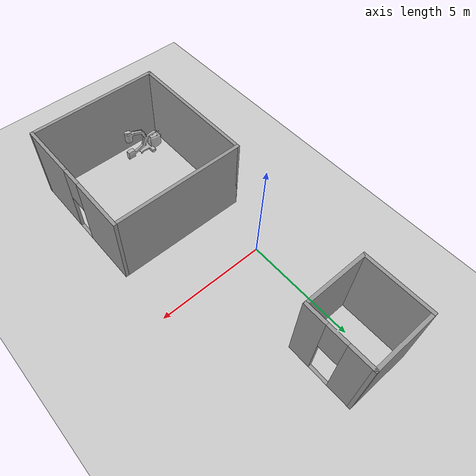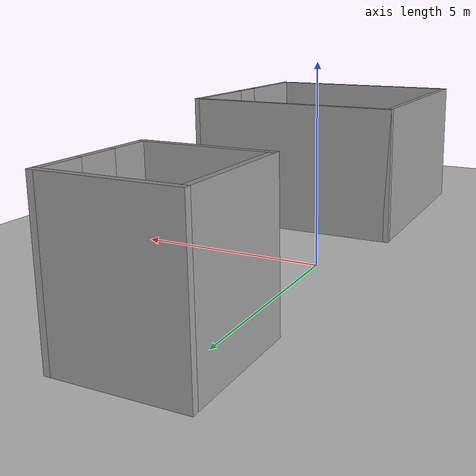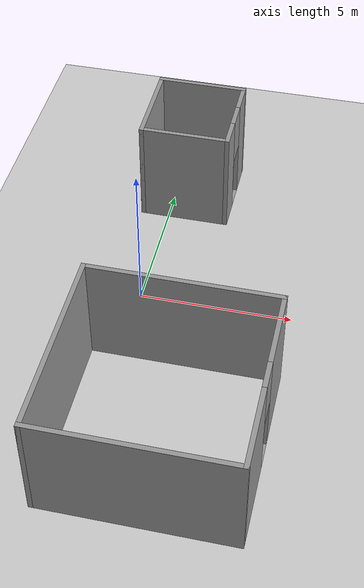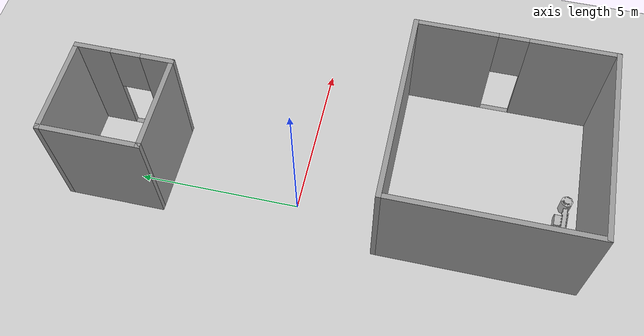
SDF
<sdf version="1.6">
 <world name="world">
  <gravity>0 0 -9.8</gravity>
  <physics name="default_physics" default="0" type="ode">
   <max_step_size>0.001</max_step_size>
   <real_time_factor>1</real_time_factor>
   <real_time_update_rate>1000</real_time_update_rate>
  </physics>
  <scene><ambient>0.6 0.6 0.6 1</ambient><background>0.4 0.4 0.4 1</background><shadows>0</shadows></scene>
  <light name="sun" type="directional">
   <pose>0 0 10 0 -0 0</pose>
   <diffuse>0.8 0.8 0.8 1</diffuse>
   <specular>0.2 0.2 0.2 1</specular>
   <attenuation>
    <range>1000</range>
    <constant>0.9</constant>
    <linear>0.01</linear>
    <quadratic>0.001</quadratic>
   </attenuation>
   <direction>-0.5 0.1 -0.9</direction>
   <spot><inner_angle>0</inner_angle><outer_angle>0</outer_angle><falloff>0</falloff></spot>
  </light>
  <model name="ground_plane">
   <static>1</static>
   <link name="link">
    <collision name="collision">
     <geometry><plane><normal>0 0 1</normal><size>100 100</size></plane></geometry>
     <surface>
      <contact><collide_bitmask>65535</collide_bitmask></contact>
      <friction><ode><mu>100</mu><mu2>50</mu2></ode></friction>
     </surface>
    </collision>
    <visual name="visual">
     <cast_shadows>0</cast_shadows>
     <geometry><plane><normal>0 0 1</normal><size>100 100</size></plane></geometry>
     <material>
      <script><uri>file://media/materials/scripts/gazebo.material</uri><name>Gazebo/Grey</name></script>
     </material>
    </visual>
   </link>
   <pose>0 0 -0.1 0 -0 0</pose>
  </model>
  <magnetic_field>6e-06 2.3e-05 -4.2e-05</magnetic_field>
  <atmosphere type="adiabatic"/>
  <spherical_coordinates>
   <surface_model>EARTH_WGS84</surface_model>
   <latitude_deg>0</latitude_deg>
   <longitude_deg>0</longitude_deg>
   <elevation>0</elevation>
   <heading_deg>0</heading_deg>
  </spherical_coordinates>
  <model name="endoscopy_feet_model">
   <pose>0.549977 5.51679 0 0 -0 0</pose>
   <link name="Wall_0">
    <pose>1.449 -0 0 0 -0 1.5708</pose>
    <visual name="Wall_0_Visual_0">
     <pose>-1.01667 0 1.829 0 -0 0</pose>
     <geometry><box><size>1.01467 0.15 3.658</size></box></geometry>
     <material>
      <script><uri>file://media/materials/scripts/gazebo.material</uri><name>Gazebo/Grey</name></script>
      <ambient>1 1 1 1</ambient>
     </material>
     <meta><layer>0</layer></meta>
    </visual>
    <collision name="Wall_0_Collision_0">
     <geometry><box><size>1.01467 0.15 3.658</size></box></geometry>
     <pose>-1.01667 0 1.829 0 -0 0</pose>
    </collision>
    <visual name="Wall_0_Visual_1">
     <pose>0.957333 0 1.829 0 -0 0</pose>
     <geometry><box><size>1.13333 0.15 3.658</size></box></geometry>
     <material>
      <script><uri>file://media/materials/scripts/gazebo.material</uri><name>Gazebo/Grey</name></script>
      <ambient>1 1 1 1</ambient>
     </material>
     <meta><layer>0</layer></meta>
    </visual>
    <collision name="Wall_0_Collision_1">
     <geometry><box><size>1.13333 0.15 3.658</size></box></geometry>
     <pose>0.957333 0 1.829 0 -0 0</pose>
    </collision>
    <visual name="Wall_0_Visual_2">
     <pose>-0.059334 0 0 0 -0 0</pose>
     <geometry><box><size>0.9 0.15 0</size></box></geometry>
     <material>
      <script><uri>file://media/materials/scripts/gazebo.material</uri><name>Gazebo/Grey</name></script>
      <ambient>1 1 1 1</ambient>
     </material>
     <meta><layer>0</layer></meta>
    </visual>
    <collision name="Wall_0_Collision_2">
     <geometry><box><size>0.9 0.15 0</size></box></geometry>
     <pose>-0.059334 0 0 0 -0 0</pose>
    </collision>
    <visual name="Wall_0_Visual_3">
     <pose>-0.059334 0 2.829 0 -0 0</pose>
     <geometry><box><size>0.9 0.15 1.658</size></box></geometry>
     <material>
      <script><uri>file://media/materials/scripts/gazebo.material</uri><name>Gazebo/Grey</name></script>
      <ambient>1 1 1 1</ambient>
     </material>
     <meta><layer>0</layer></meta>
    </visual>
    <collision name="Wall_0_Collision_3">
     <geometry><box><size>0.9 0.15 1.658</size></box></geometry>
     <pose>-0.059334 0 2.829 0 -0 0</pose>
    </collision>
   </link>
   <link name="Wall_2">
    <collision name="Wall_2_Collision">
     <geometry><box><size>3.048 0.15 3.658</size></box></geometry>
     <pose>0 0 1.829 0 -0 0</pose>
    </collision>
    <visual name="Wall_2_Visual">
     <pose>0 0 1.829 0 -0 0</pose>
     <geometry><box><size>3.048 0.15 3.658</size></box></geometry>
     <material>
      <script><uri>file://media/materials/scripts/gazebo.material</uri><name>Gazebo/Grey</name></script>
      <ambient>1 1 1 1</ambient>
     </material>
     <meta><layer>0</layer></meta>
    </visual>
    <pose>0 1.449 0 0 -0 3.14159</pose>
   </link>
   <link name="Wall_4">
    <collision name="Wall_4_Collision">
     <geometry><box><size>3.048 0.15 3.658</size></box></geometry>
     <pose>0 0 1.829 0 -0 0</pose>
    </collision>
    <visual name="Wall_4_Visual">
     <pose>0 0 1.829 0 -0 0</pose>
     <geometry><box><size>3.048 0.15 3.658</size></box></geometry>
     <material>
      <script><uri>file://media/materials/scripts/gazebo.material</uri><name>Gazebo/Grey</name></script>
      <ambient>1 1 1 1</ambient>
     </material>
     <meta><layer>0</layer></meta>
    </visual>
    <pose>-1.449 -0 0 0 -0 -1.5708</pose>
   </link>
   <link name="Wall_6">
    <collision name="Wall_6_Collision">
     <geometry><box><size>3.048 0.15 3.658</size></box></geometry>
     <pose>0 0 1.829 0 -0 0</pose>
    </collision>
    <visual name="Wall_6_Visual">
     <pose>0 0 1.829 0 -0 0</pose>
     <geometry><box><size>3.048 0.15 3.658</size></box></geometry>
     <material>
      <script><uri>file://media/materials/scripts/gazebo.material</uri><name>Gazebo/Grey</name></script>
      <ambient>1 1 1 1</ambient>
     </material>
     <meta><layer>0</layer></meta>
    </visual>
    <pose>0 -1.449 0 0 -0 0</pose>
   </link>
   <static>1</static>
  </model>
  <model name="theatre_feet_model">
   <pose>1.99303 -5.34406 0 0 -0 0</pose>
   <link name="Wall_1">
    <collision name="Wall_1_Collision">
     <geometry><box><size>6.096 0.15 3.658</size></box></geometry>
     <pose>0 0 1.829 0 -0 0</pose>
    </collision>
    <visual name="Wall_1_Visual">
     <pose>0 0 1.829 0 -0 0</pose>
     <geometry><box><size>6.096 0.15 3.658</size></box></geometry>
     <material>
      <script><uri>file://media/materials/scripts/gazebo.material</uri><name>Gazebo/Grey</name></script>
      <ambient>1 1 1 1</ambient>
     </material>
     <meta><layer>0</layer></meta>
    </visual>
    <pose>0 2.7895 0 0 -0 0</pose>
   </link>
   <link name="Wall_3">
    <pose>2.973 -0.1835 0 0 -0 -1.5708</pose>
    <visual name="Wall_3_Visual_0">
     <pose>-1.78092 0 1.829 0 -0 0</pose>
     <geometry><box><size>2.53417 0.15 3.658</size></box></geometry>
     <material>
      <script><uri>file://media/materials/scripts/gazebo.material</uri><name>Gazebo/Grey</name></script>
      <ambient>1 1 1 1</ambient>
     </material>
     <meta><layer>0</layer></meta>
    </visual>
    <collision name="Wall_3_Collision_0">
     <geometry><box><size>2.53417 0.15 3.658</size></box></geometry>
     <pose>-1.78092 0 1.829 0 -0 0</pose>
    </collision>
    <visual name="Wall_3_Visual_1">
     <pose>1.71708 0 1.829 0 -0 0</pose>
     <geometry><box><size>2.66183 0.15 3.658</size></box></geometry>
     <material>
      <script><uri>file://media/materials/scripts/gazebo.material</uri><name>Gazebo/Grey</name></script>
      <ambient>1 1 1 1</ambient>
     </material>
     <meta><layer>0</layer></meta>
    </visual>
    <collision name="Wall_3_Collision_1">
     <geometry><box><size>2.66183 0.15 3.658</size></box></geometry>
     <pose>1.71708 0 1.829 0 -0 0</pose>
    </collision>
    <visual name="Wall_3_Visual_2">
     <pose>-0.063831 0 0 0 -0 0</pose>
     <geometry><box><size>0.9 0.15 0</size></box></geometry>
     <material>
      <script><uri>file://media/materials/scripts/gazebo.material</uri><name>Gazebo/Grey</name></script>
      <ambient>1 1 1 1</ambient>
     </material>
     <meta><layer>0</layer></meta>
    </visual>
    <collision name="Wall_3_Collision_2">
     <geometry><box><size>0.9 0.15 0</size></box></geometry>
     <pose>-0.063831 0 0 0 -0 0</pose>
    </collision>
    <visual name="Wall_3_Visual_3">
     <pose>-0.063831 0 2.829 0 -0 0</pose>
     <geometry><box><size>0.9 0.15 1.658</size></box></geometry>
     <material>
      <script><uri>file://media/materials/scripts/gazebo.material</uri><name>Gazebo/Grey</name></script>
      <ambient>1 1 1 1</ambient>
     </material>
     <meta><layer>0</layer></meta>
    </visual>
    <collision name="Wall_3_Collision_3">
     <geometry><box><size>0.9 0.15 1.658</size></box></geometry>
     <pose>-0.063831 0 2.829 0 -0 0</pose>
    </collision>
   </link>
   <link name="Wall_5">
    <collision name="Wall_5_Collision">
     <geometry><box><size>6.096 0.15 3.658</size></box></geometry>
     <pose>0 0 1.829 0 -0 0</pose>
    </collision>
    <visual name="Wall_5_Visual">
     <pose>0 0 1.829 0 -0 0</pose>
     <geometry><box><size>6.096 0.15 3.658</size></box></geometry>
     <material>
      <script><uri>file://media/materials/scripts/gazebo.material</uri><name>Gazebo/Grey</name></script>
      <ambient>1 1 1 1</ambient>
     </material>
     <meta><layer>0</layer></meta>
    </visual>
    <pose>0 -3.1565 0 0 -0 0</pose>
   </link>
   <link name="Wall_7">
    <collision name="Wall_7_Collision">
     <geometry><box><size>6.096 0.15 3.658</size></box></geometry>
     <pose>0 0 1.829 0 -0 0</pose>
    </collision>
    <visual name="Wall_7_Visual">
     <pose>0 0 1.829 0 -0 0</pose>
     <geometry><box><size>6.096 0.15 3.658</size></box></geometry>
     <material>
      <script><uri>file://media/materials/scripts/gazebo.material</uri><name>Gazebo/Grey</name></script>
      <ambient>1 1 1 1</ambient>
     </material>
     <meta><layer>0</layer></meta>
    </visual>
    <pose>-2.973 -0.1835 0 0 -0 -1.5708</pose>
   </link>
   <static>1</static>
  </model>
  <model name="CArm">
   <static>1</static>
   <link name="body">
    <visual name="visual"><geometry><mesh><uri>file://CArm/meshes/CArm.obj</uri></mesh></geometry></visual>
    <collision name="collision">
     <geometry><mesh><uri>file://CArm/meshes/CArm_Col.obj</uri></mesh></geometry>
    </collision>
   </link>
   <pose>0.242088 -7.76041 0 0 -0 0</pose>
  </model>
 </world>
</sdf>
